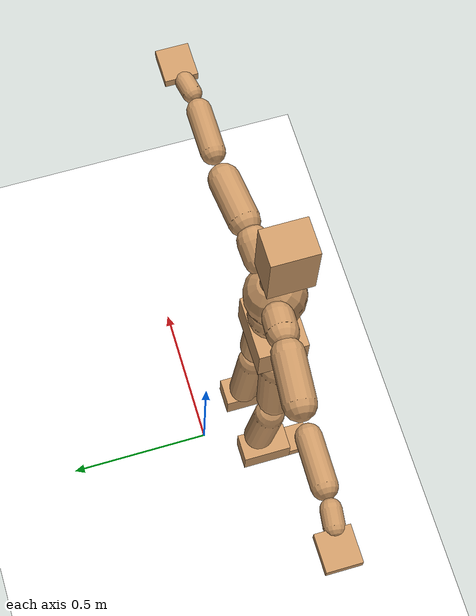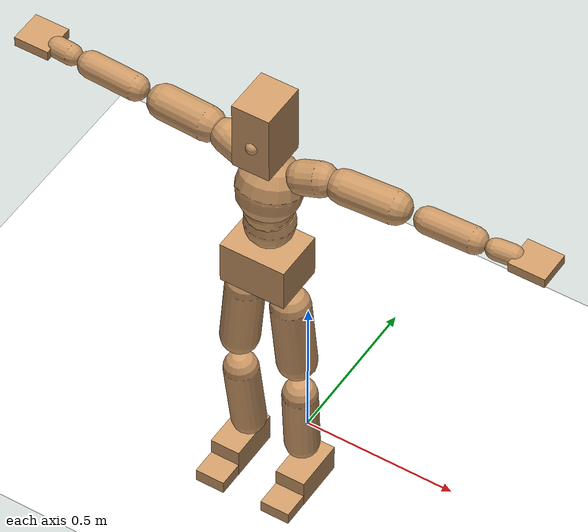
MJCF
<mujoco model="humanoid">
  <option integrator="implicitfast" />

  <visual>
    <global offwidth="1280" offheight="960" />
    <headlight active="1" ambient="0.34 0.34 0.34" diffuse="0.5 0.5 0.5" />
  </visual>

  <default>
    <joint damping="2" stiffness="2" armature="0.01" limited="true" solimplimit="0 .99 .01" />
    <geom condim="1" friction="0.7 0.005 0.0001" solimp=".99 .99 .003" solref="0.015 1" margin="0.001" rgba="0.8 0.6 .4 1" />
    <default class="smplcontact">
      <geom condim="3" friction="1. 0.005 0.0001" solref="0.015 1" solimp="0.98 0.98 0.001" priority="1" />
    </default>
    <default class="stiff_medium">
      <joint stiffness="10" />
    </default>
    <default class="stiff_medium_higher">
      <joint stiffness="50" />
    </default>
    <default class="stiff_high">
      <joint stiffness="100" />
    </default>
  </default>

  <asset>
    <texture type="skybox" builtin="gradient" rgb1="0.99 0.99 0.99" rgb2="0.608 0.828 0.892" width="100" />
    <texture builtin="flat" height="1278" mark="cross" markrgb="1 1 1" name="texgeom" random="0.01" rgb1="0.8 0.6 0.4" rgb2="0.8 0.6 0.4" type="cube" width="127" />
    <texture name="texplane" type="2d" builtin="checker" markrgb="1 1 1" rgb1="0.756 0.772 0.76" rgb2="0.6 0.6 0.6" width="100" height="100" />
    <material name="MatPlane" reflectance="0.5" texture="texplane" texrepeat="1 1" texuniform="true" />
    <material name="geom" texture="texgeom" texuniform="true" />
  </asset>

  <worldbody>
    <light name="tracking_light" pos="0 0 7" dir="0 0 -1" directional="true" cutoff="100" exponent="1" diffuse="1 1 1" specular="0.1 0.1 0.1" mode="trackcom" />
    <camera name="back" pos="0 3 2.4" xyaxes="-1 0 0 0 -1 2" mode="trackcom" />
    <camera name="side" pos="-3 0 2.4" xyaxes="0 -1 0 1 0 2" mode="trackcom" />
    <camera name="front_side" pos="-2.8 -2.8 0.8" xyaxes="0.5 -0.5 0 0.1 0.1 1" mode="trackcom" />
    <geom condim="3" name="floor" pos="0 0 0" rgba="1 1 1 1" size="100 100 .2" type="plane" material="MatPlane" />
    <body name="Pelvis" pos="-0.0018 -0.2233 0.9367" euler="90 0 0">
      <site name="Pelvis" size="0.01" />
      <freejoint name="Pelvis" />
      <geom type="box" pos="-0.0000 -0.0121 -0.0055" size="0.1069 0.0722 0.083" quat="1.0000 0.0000 0.0000 0.0000" density="3165.830099" name="Pelvis" />
      <body name="L_Hip" pos="0.0695 -0.0914 -0.0068">
        <joint name="L_Hip_x" type="hinge" pos="0 0 0" axis="1 0 0" stiffness="10.0" range="-160.0 22.92" class="stiff_medium" damping="15.0" armature="0.01"/>
        <joint name="L_Hip_y" type="hinge" pos="0 0 0" axis="0 1 0" stiffness="10.0" range="-70.0 70.0" class="stiff_medium" damping="9.999999999999998" armature="0.009999999999999998"/>
        <joint name="L_Hip_z" type="hinge" pos="0 0 0" axis="0 0 1" stiffness="10.0" range="-28.65 90.0" class="stiff_medium" damping="9.999999999999998" armature="0.009999999999999998"/>
        <geom type="capsule" density="2040.816327" fromto="0.0069 -0.075 -0.0009 0.0274 -0.3002 -0.0036" size="0.0615" name="L_Hip" />
        <body name="L_Knee" pos="0.0343 -0.3752 -0.0045">
          <joint name="L_Knee_x" type="hinge" pos="0 0 0" axis="1 0 0" range="-5.16 171.89" damping="7.999999999999999" armature="0.009999999999999998" stiffness="2.0"/>
          <joint name="L_Knee_y" type="hinge" pos="0 0 0" axis="0 1 0" range="-4.58 6.88" damping="8.0" armature="0.010000000000000002" stiffness="2.0"/>
          <joint name="L_Knee_z" type="hinge" pos="0 0 0" axis="0 0 1" range="-6.88 4.58" damping="7.999999999999998" armature="0.009999999999999997" stiffness="2.0"/>
          <geom type="capsule" density="1234.567901" fromto="-0.0027 -0.0796 -0.0087 -0.0109 -0.3184 -0.035" size="0.0541" name="L_Knee" />
          <body name="L_Ankle" pos="-0.0136 -0.398 -0.0437">
            <joint name="L_Ankle_x" type="hinge" pos="0 0 0" axis="1 0 0" range="-45.84 45.84" class="stiff_medium" damping="6.000000000000059" armature="0.010000000000000196" stiffness="10.0"/>
            <joint name="L_Ankle_y" type="hinge" pos="0 0 0" axis="0 1 0" range="-74.48 22.92" class="stiff_medium" damping="3.000000000000001" armature="0.010000000000000005" stiffness="10.0"/>
            <joint name="L_Ankle_z" type="hinge" pos="0 0 0" axis="0 0 1" range="-4.58 4.58" class="stiff_medium" damping="6.0000000000000835" armature="0.01000000000000028" stiffness="10.0"/>
            <geom type="box" pos="0.0233 -0.0239 0.0242" size="0.0483 0.0464 0.085" quat="1.0000 0.0000 0.0000 0.0000" density="449.071558" name="L_Ankle" class="smplcontact" />
            <body name="L_Toe" pos="0.0264 -0.0558 0.1193">
              <joint name="L_Toe_x" type="hinge" pos="0 0 0" axis="1 0 0" range="-91.67 22.92" armature="0.010000000000000066" damping="2.0000000000000067" stiffness="2.0"/>
              <joint name="L_Toe_y" type="hinge" pos="0 0 0" axis="0 1 0" range="-4.58 4.58" armature="0.01" damping="2.0" stiffness="2.0"/>
              <joint name="L_Toe_z" type="hinge" pos="0 0 0" axis="0 0 1" range="-4.58 4.58" armature="0.009999999999999416" damping="1.9999999999999414" stiffness="2.0"/>
              <geom type="box" pos="-0.003 0.0055 0.0248" size="0.0478 0.02 0.0496" quat="1.0000 0.0000 0.0000 0.0000" density="423.206892" name="L_Toe" class="smplcontact" />
            </body>
          </body>
        </body>
      </body>
      <body name="R_Hip" pos="-0.0677 -0.0905 -0.0043">
        <joint name="R_Hip_x" type="hinge" pos="0 0 0" axis="1 0 0" stiffness="10.0" range="-160.0 22.92" class="stiff_medium" damping="15.0" armature="0.01"/>
        <joint name="R_Hip_y" type="hinge" pos="0 0 0" axis="0 1 0" stiffness="10.0" range="-70.0 70.0" class="stiff_medium" damping="9.999999999999998" armature="0.009999999999999998"/>
        <joint name="R_Hip_z" type="hinge" pos="0 0 0" axis="0 0 1" stiffness="10.0" range="-90.0 28.65" class="stiff_medium" damping="9.999999999999998" armature="0.009999999999999998"/>
        <geom type="capsule" density="2040.816327" fromto="-0.0077 -0.0765 -0.0018 -0.0306 -0.3061 -0.0071" size="0.0606" name="R_Hip" />
        <body name="R_Knee" pos="-0.0383 -0.3826 -0.0089">
          <joint name="R_Knee_x" type="hinge" pos="0 0 0" axis="1 0 0" range="-5.16 171.89" damping="7.999999999999999" armature="0.009999999999999998" stiffness="2.0"/>
          <joint name="R_Knee_y" type="hinge" pos="0 0 0" axis="0 1 0" range="-6.88 4.58" damping="8.0" armature="0.010000000000000002" stiffness="2.0"/>
          <joint name="R_Knee_z" type="hinge" pos="0 0 0" axis="0 0 1" range="-4.58 6.88" damping="7.999999999999998" armature="0.009999999999999997" stiffness="2.0"/>
          <geom type="capsule" density="1234.567901" fromto="0.0032 -0.0797 -0.0085 0.0126 -0.3187 -0.0338" size="0.0541" name="R_Knee" />
          <body name="R_Ankle" pos="0.0158 -0.3984 -0.0423">
            <joint name="R_Ankle_x" type="hinge" pos="0 0 0" axis="1 0 0" range="-45.84 45.84" class="stiff_medium" damping="6.000000000000059" armature="0.010000000000000196" stiffness="10.0"/>
            <joint name="R_Ankle_y" type="hinge" pos="0 0 0" axis="0 1 0" range="-22.92 74.48" class="stiff_medium" damping="3.000000000000001" armature="0.010000000000000005" stiffness="10.0"/>
            <joint name="R_Ankle_z" type="hinge" pos="0 0 0" axis="0 0 1" range="-4.58 4.58" class="stiff_medium" damping="6.0000000000000835" armature="0.01000000000000028" stiffness="10.0"/>
            <geom type="box" pos="-0.0212 -0.0174 0.0256" size="0.0483 0.0478 0.0865" quat="1.0000 0.0000 0.0000 0.0000" density="434.700981" name="R_Ankle" class="smplcontact" />
            <body name="R_Toe" pos="-0.0254 -0.0481 0.1233">
              <joint name="R_Toe_x" type="hinge" pos="0 0 0" axis="1 0 0" range="-91.67 22.92" armature="0.010000000000000066" damping="2.0000000000000067" stiffness="2.0"/>
              <joint name="R_Toe_y" type="hinge" pos="0 0 0" axis="0 1 0" range="-4.58 4.58" armature="0.01" damping="2.0" stiffness="2.0"/>
              <joint name="R_Toe_z" type="hinge" pos="0 0 0" axis="0 0 1" range="-4.58 4.58" armature="0.009999999999999416" damping="1.9999999999999414" stiffness="2.0"/>
              <geom type="box" pos="0.0042 0.0045 0.0227" size="0.0479 0.0216 0.0493" quat="1.0000 0.0000 0.0000 0.0000" density="407.384095" name="R_Toe" class="smplcontact" />
            </body>
          </body>
        </body>
      </body>
      <body name="Torso" pos="-0.001875 0.08175 -0.020025">
        <joint name="Torso_x" type="hinge" pos="0 0 0" axis="1 0 0" range="-25.78 57.3" class="stiff_medium" damping="10.913650392207913" armature="0.006667379561679105" stiffness="7.939668636363636"/>
        <joint name="Torso_y" type="hinge" pos="0 0 0" axis="0 1 0" range="-57.3 57.3" class="stiff_high" damping="17.724948533233775" armature="0.01001466915688518" stiffness="78.42840227272727"/>
        <joint name="Torso_z" type="hinge" pos="0 0 0" axis="0 0 1" range="-34.38 34.38" class="stiff_high" damping="15.292750692520116" armature="0.007730747711918963" stiffness="75.62923809523808"/>
        <geom type="capsule" density="2040.816327" fromto="0.001875 0.0456 0.000375 0.00225 0.055725 0.00045" size="0.0769" name="Torso" />
        <body name="Spine" pos="0.004125 0.1014 0.000825">
          <joint name="Spine_x" type="hinge" pos="0 0 0" axis="1 0 0" stiffness="8.1652025" range="-25.78 57.3" class="stiff_medium" damping="11.68459184157241" armature="0.007431519385894826"/>
          <joint name="Spine_y" type="hinge" pos="0 0 0" axis="0 1 0" stiffness="8.29715487804878" range="-57.3 57.3" class="stiff_high" damping="7.2939738739697715" armature="0.010018881407263069"/>
          <joint name="Spine_z" type="hinge" pos="0 0 0" axis="0 0 1" stiffness="16.66748454545455" range="-34.38 34.38" class="stiff_high" damping="10.257719901093456" armature="0.008767971195848165"/>
          <geom type="capsule" density="2040.816327" fromto="0.000525 0.01785 0.00855 0.0006 0.021825 0.0105" size="0.0755" name="Spine" />
          <body name="Chest" pos="0.001125 0.039675 0.01905">
            <joint name="Chest_x" type="hinge" pos="0 0 0" axis="1 0 0" stiffness="8.665568333333333" range="-25.78 57.3" class="stiff_medium" damping="12.409790765452927" armature="0.007898585960147425"/>
            <joint name="Chest_y" type="hinge" pos="0 0 0" axis="0 1 0" stiffness="9.207535853658538" range="-57.3 57.3" class="stiff_high" damping="7.669827966294824" armature="0.00998269616586398"/>
            <joint name="Chest_z" type="hinge" pos="0 0 0" axis="0 0 1" stiffness="17.13260045454546" range="-34.38 34.38" class="stiff_high" damping="10.65259250372851" armature="0.009199301335191097"/>
            <geom type="capsule" density="2040.816327" fromto="-0.000675 0.05115 -0.012975 -0.00075 0.062475 -0.0159" size="0.1002" name="Chest" />
            <body name="Neck" pos="-0.0021 0.160425 -0.032175">
              <joint name="Neck_x" type="hinge" pos="0 0 0" axis="1 0 0" range="-28.65 57.3" class="stiff_medium_higher" damping="9.840270859667061" armature="0.009942373205123851" stiffness="48.696085227272725"/>
              <joint name="Neck_y" type="hinge" pos="0 0 0" axis="0 1 0" range="-40.11 40.11" class="stiff_medium_higher" damping="9.817023968165504" armature="0.009837761878927204" stiffness="48.981648863636366"/>
              <joint name="Neck_z" type="hinge" pos="0 0 0" axis="0 0 1" range="-40.11 40.11" class="stiff_medium_higher" damping="9.929269324283064" armature="0.009959258954271702" stiffness="49.49685"/>
              <geom type="capsule" density="1000" fromto="0.00075 0.00975 0.007725 0.003075 0.039 0.030825" size="0.0436" name="Neck" />
              <body name="Head" pos="0.0052 0.065 0.0513">
                <joint name="Head_x" type="hinge" pos="0 0 0" axis="1 0 0" range="-28.65 57.3" class="stiff_medium_higher" damping="2.000000000000005" armature="0.010000000000000049" stiffness="50.0"/>
                <joint name="Head_y" type="hinge" pos="0 0 0" axis="0 1 0" range="-40.11 40.11" class="stiff_medium_higher" damping="2.0" armature="0.010000000000000002" stiffness="50.0"/>
                <joint name="Head_z" type="hinge" pos="0 0 0" axis="0 0 1" range="-40.11 40.11" class="stiff_medium_higher" damping="2.000000000000004" armature="0.01000000000000004" stiffness="50.0"/>
                <geom type="box" pos="-0.0042 0.0876 -0.0116" size="0.0606 0.1154 0.076" quat="1.0000 0.0000 0.0000 0.0000" density="1018.069894" name="Head" />
                <geom type="capsule" name="nose" size="0.02 0.01" pos="0 0.07 0.05" quat="1 0 0 0" mass="0" contype="0" conaffinity="0" />
              </body>
            </body>
            <body name="L_Thorax" pos="0.0788 0.1217 -0.0341">
              <joint name="L_Thorax_x" type="hinge" pos="0 0 0" axis="1 0 0" range="-10.89 4.58" class="stiff_medium_higher" damping="19.999999999999922" armature="0.009999999999999922" stiffness="50.0"/>
              <joint name="L_Thorax_y" type="hinge" pos="0 0 0" axis="0 1 0" range="-28.65 17.19" class="stiff_medium_higher" damping="20.0" armature="0.010000000000000002" stiffness="50.0"/>
              <joint name="L_Thorax_z" type="hinge" pos="0 0 0" axis="0 0 1" range="-31.51 40.11" class="stiff_medium_higher" damping="20.0" armature="0.01" stiffness="50.0"/>
              <geom type="capsule" density="1000" fromto="0.0182 0.0061 -0.0018 0.0728 0.0244 -0.0071" size="0.0521" name="L_Thorax" />
              <body name="L_Shoulder" pos="0.091 0.0305 -0.0089">
                <joint name="L_Shoulder_x" type="hinge" pos="0 0 0" axis="1 0 0" range="-97.4 97.4" class="stiff_medium" damping="5.999999999999988" armature="0.00999999999999996" stiffness="10.0"/>
                <joint name="L_Shoulder_y" type="hinge" pos="0 0 0" axis="0 1 0" range="-108.86 80.21" class="stiff_medium" damping="6.0" armature="0.01" stiffness="10.0"/>
                <joint name="L_Shoulder_z" type="hinge" pos="0 0 0" axis="0 0 1" range="-97.4 85.94" class="stiff_medium" damping="6.0" armature="0.01" stiffness="10.0"/>
                <geom type="capsule" density="1000" fromto="0.0519 -0.0026 -0.0055 0.2077 -0.0102 -0.022" size="0.0517" name="L_Shoulder" />
                <body name="L_Elbow" pos="0.2596 -0.0128 -0.0275">
                  <joint name="L_Elbow_x" type="hinge" pos="0 0 0" axis="1 0 0" range="-17.19 4.58" damping="4.999999999999961" armature="0.009999999999999842" stiffness="2.0"/>
                  <joint name="L_Elbow_y" type="hinge" pos="0 0 0" axis="0 1 0" range="-180.0 17.19" damping="5.000000000000002" armature="0.010000000000000009" stiffness="2.0"/>
                  <joint name="L_Elbow_z" type="hinge" pos="0 0 0" axis="0 0 1" range="-100.84 4.58" damping="5.0000000000000036" armature="0.010000000000000014" stiffness="2.0"/>
                  <geom type="capsule" density="1000" fromto="0.0498 0.0018 -0.0002 0.1994 0.0072 -0.0009" size="0.0405" name="L_Elbow" />
                  <body name="L_Wrist" pos="0.2492 0.009 -0.0012">
                    <joint name="L_Wrist_x" type="hinge" pos="0 0 0" axis="1 0 0" range="-180.0 22.92" armature="0.010000000000000085" damping="2.0000000000000084" stiffness="2.0"/>
                    <joint name="L_Wrist_y" type="hinge" pos="0 0 0" axis="0 1 0" range="-17.19 17.19" armature="0.009999999999999879" damping="1.9999999999999878" stiffness="2.0"/>
                    <joint name="L_Wrist_z" type="hinge" pos="0 0 0" axis="0 0 1" range="-22.92 22.92" armature="0.009999999999999934" damping="1.9999999999999933" stiffness="2.0"/>
                    <geom type="capsule" density="1000" fromto="0.0168 -0.0016 -0.003 0.0672 -0.0065 -0.012" size="0.0318" name="L_Wrist" class="smplcontact" />
                    <body name="L_Hand" pos="0.084 -0.0082 -0.0149">
                      <joint name="L_Hand_x" type="hinge" pos="0 0 0" axis="1 0 0" range="-17.19 17.19" armature="0.009999999999999867" damping="1.9999999999999867" stiffness="2.0"/>
                      <joint name="L_Hand_y" type="hinge" pos="0 0 0" axis="0 1 0" range="-51.57 51.57" armature="0.010000000000000201" damping="2.00000000000002" stiffness="2.0"/>
                      <joint name="L_Hand_z" type="hinge" pos="0 0 0" axis="0 0 1" range="-91.67 91.67" armature="0.010000000000000524" damping="2.0000000000000524" stiffness="2.0"/>
                      <geom type="box" pos="0.0493 0.001 -0.0058" size="0.0585 0.0158 0.0538" quat="1.0000 0.0000 0.0000 0.0000" density="400.552564" name="L_Hand" class="smplcontact" />
                    </body>
                  </body>
                </body>
              </body>
            </body>
            <body name="R_Thorax" pos="-0.0818 0.1188 -0.0386">
              <joint name="R_Thorax_x" type="hinge" pos="0 0 0" axis="1 0 0" range="-10.89 4.58" class="stiff_medium_higher" damping="19.999999999999922" armature="0.009999999999999922" stiffness="50.0"/>
              <joint name="R_Thorax_y" type="hinge" pos="0 0 0" axis="0 1 0" range="-17.19 28.65" class="stiff_medium_higher" damping="20.0" armature="0.010000000000000002" stiffness="50.0"/>
              <joint name="R_Thorax_z" type="hinge" pos="0 0 0" axis="0 0 1" range="-40.11 31.51" class="stiff_medium_higher" damping="20.0" armature="0.01" stiffness="50.0"/>
              <geom type="capsule" density="1000" fromto="-0.0192 0.0065 -0.0018 -0.0768 0.026 -0.0073" size="0.0511" name="R_Thorax" />
              <body name="R_Shoulder" pos="-0.096 0.0326 -0.0091">
                <joint name="R_Shoulder_x" type="hinge" pos="0 0 0" axis="1 0 0" range="-97.4 97.4" class="stiff_medium" damping="5.999999999999988" armature="0.00999999999999996" stiffness="10.0"/>
                <joint name="R_Shoulder_y" type="hinge" pos="0 0 0" axis="0 1 0" range="-80.21 108.86" class="stiff_medium" damping="6.0" armature="0.01" stiffness="10.0"/>
                <joint name="R_Shoulder_z" type="hinge" pos="0 0 0" axis="0 0 1" range="-85.94 97.4" class="stiff_medium" damping="6.0" armature="0.01" stiffness="10.0"/>
                <geom type="capsule" density="1000" fromto="-0.0507 -0.0027 -0.0043 -0.203 -0.0107 -0.0171" size="0.0531" name="R_Shoulder" />
                <body name="R_Elbow" pos="-0.2537 -0.0133 -0.0214">
                  <joint name="R_Elbow_x" type="hinge" pos="0 0 0" axis="1 0 0" range="-17.19 4.58" damping="4.999999999999961" armature="0.009999999999999842" stiffness="2.0"/>
                  <joint name="R_Elbow_y" type="hinge" pos="0 0 0" axis="0 1 0" range="-17.19 180.0" damping="5.000000000000002" armature="0.010000000000000009" stiffness="2.0"/>
                  <joint name="R_Elbow_z" type="hinge" pos="0 0 0" axis="0 0 1" range="-4.58 100.84" damping="5.0000000000000036" armature="0.010000000000000014" stiffness="2.0"/>
                  <geom type="capsule" density="1000" fromto="-0.0511 0.0016 -0.0011 -0.2042 0.0062 -0.0044" size="0.0408" name="R_Elbow" />
                  <body name="R_Wrist" pos="-0.2553 0.0078 -0.0056">
                    <joint name="R_Wrist_x" type="hinge" pos="0 0 0" axis="1 0 0" range="-180.0 22.92" armature="0.010000000000000085" damping="2.0000000000000084" stiffness="2.0"/>
                    <joint name="R_Wrist_y" type="hinge" pos="0 0 0" axis="0 1 0" range="-17.19 17.19" armature="0.009999999999999879" damping="1.9999999999999878" stiffness="2.0"/>
                    <joint name="R_Wrist_z" type="hinge" pos="0 0 0" axis="0 0 1" range="-22.92 22.92" armature="0.009999999999999934" damping="1.9999999999999933" stiffness="2.0"/>
                    <geom type="capsule" density="1000" fromto="-0.0169 -0.0012 -0.0021 -0.0677 -0.0049 -0.0083" size="0.0326" name="R_Wrist" class="smplcontact" />
                    <body name="R_Hand" pos="-0.0846 -0.0061 -0.0103">
                      <joint name="R_Hand_x" type="hinge" pos="0 0 0" axis="1 0 0" range="-17.19 17.19" armature="0.009999999999999867" damping="1.9999999999999867" stiffness="2.0"/>
                      <joint name="R_Hand_y" type="hinge" pos="0 0 0" axis="0 1 0" range="-51.57 51.57" armature="0.010000000000000201" damping="2.00000000000002" stiffness="2.0"/>
                      <joint name="R_Hand_z" type="hinge" pos="0 0 0" axis="0 0 1" range="-91.67 91.67" armature="0.010000000000000524" damping="2.0000000000000524" stiffness="2.0"/>
                      <geom type="box" pos="-0.0462 -0.0009 -0.0079" size="0.0569 0.0164 0.0546" quat="1.0000 0.0000 0.0000 0.0000" density="403.679611" name="R_Hand" class="smplcontact" />
                    </body>
                  </body>
                </body>
              </body>
            </body>
          </body>
        </body>
      </body>
    </body>
  </worldbody>
  <actuator>
    <general name="L_Hip_x" joint="L_Hip_x" biastype="affine" gainprm="287.33006409732246" biasprm="-215.3247604770444 -180.0 -2.0" ctrllimited="true" ctrlrange="-1 1" forcerange="-360.0 360.0" />
    <general name="L_Hip_y" joint="L_Hip_y" biastype="affine" gainprm="219.9114857512855" biasprm="0.0 -180.0 -1.9999999999999998" ctrllimited="true" ctrlrange="-1 1" forcerange="-360.0 360.0" />
    <general name="L_Hip_z" joint="L_Hip_z" biastype="affine" gainprm="186.3749841742145" biasprm="96.3683546488669 -180.0 -1.9999999999999998" ctrllimited="true" ctrlrange="-1 1" forcerange="-360.0 360.0" />
    <general name="L_Knee_x" joint="L_Knee_x" biastype="affine" gainprm="278.10948965903646" biasprm="261.8988715665131 -180.0 -1.9999999999999998" ctrllimited="true" ctrlrange="-1 1" forcerange="-360.0 360.0" />
    <general name="L_Knee_y" joint="L_Knee_y" biastype="affine" gainprm="18.001325905069514" biasprm="3.612831551628262 -180.0 -2.0" ctrllimited="true" ctrlrange="-1 1" forcerange="-360.0 360.0" />
    <general name="L_Knee_z" joint="L_Knee_z" biastype="affine" gainprm="18.001325905069514" biasprm="-3.612831551628262 -180.0 -1.9999999999999996" ctrllimited="true" ctrlrange="-1 1" forcerange="-360.0 360.0" />
    <general name="L_Ankle_x" joint="L_Ankle_x" biastype="affine" gainprm="72.00530362027807" biasprm="0.0 -90.0 -2.0000000000000195" ctrllimited="true" ctrlrange="-1 1" forcerange="-180.0 180.0" />
    <general name="L_Ankle_y" joint="L_Ankle_y" biastype="affine" gainprm="76.49778111491148" biasprm="-40.49512930477244 -90.0 -2.0000000000000004" ctrllimited="true" ctrlrange="-1 1" forcerange="-180.0 180.0" />
    <general name="L_Ankle_z" joint="L_Ankle_z" biastype="affine" gainprm="7.1942471767206255" biasprm="0.0 -90.0 -2.000000000000028" ctrllimited="true" ctrlrange="-1 1" forcerange="-180.0 180.0" />
    <general name="L_Toe_x" joint="L_Toe_x" biastype="affine" gainprm="71.99902043497087" biasprm="-43.19689898685965 -72.0 -0.8000000000000027" ctrllimited="true" ctrlrange="-1 1" forcerange="-144.0 144.0" />
    <general name="L_Toe_y" joint="L_Toe_y" biastype="affine" gainprm="5.755397741376501" biasprm="0.0 -72.0 -0.8" ctrllimited="true" ctrlrange="-1 1" forcerange="-144.0 144.0" />
    <general name="L_Toe_z" joint="L_Toe_z" biastype="affine" gainprm="5.755397741376501" biasprm="0.0 -72.0 -0.7999999999999766" ctrllimited="true" ctrlrange="-1 1" forcerange="-144.0 144.0" />
    <general name="R_Hip_x" joint="R_Hip_x" biastype="affine" gainprm="287.33006409732246" biasprm="-215.3247604770444 -180.0 -2.0" ctrllimited="true" ctrlrange="-1 1" forcerange="-360.0 360.0" />
    <general name="R_Hip_y" joint="R_Hip_y" biastype="affine" gainprm="219.9114857512855" biasprm="0.0 -180.0 -1.9999999999999998" ctrllimited="true" ctrlrange="-1 1" forcerange="-360.0 360.0" />
    <general name="R_Hip_z" joint="R_Hip_z" biastype="affine" gainprm="186.3749841742145" biasprm="-96.3683546488669 -180.0 -1.9999999999999998" ctrllimited="true" ctrlrange="-1 1" forcerange="-360.0 360.0" />
    <general name="R_Knee_x" joint="R_Knee_x" biastype="affine" gainprm="278.10948965903646" biasprm="261.8988715665131 -180.0 -1.9999999999999998" ctrllimited="true" ctrlrange="-1 1" forcerange="-360.0 360.0" />
    <general name="R_Knee_y" joint="R_Knee_y" biastype="affine" gainprm="18.001325905069514" biasprm="-3.612831551628262 -180.0 -2.0" ctrllimited="true" ctrlrange="-1 1" forcerange="-360.0 360.0" />
    <general name="R_Knee_z" joint="R_Knee_z" biastype="affine" gainprm="18.001325905069514" biasprm="3.612831551628262 -180.0 -1.9999999999999996" ctrllimited="true" ctrlrange="-1 1" forcerange="-360.0 360.0" />
    <general name="R_Ankle_x" joint="R_Ankle_x" biastype="affine" gainprm="72.00530362027807" biasprm="0.0 -90.0 -2.0000000000000195" ctrllimited="true" ctrlrange="-1 1" forcerange="-180.0 180.0" />
    <general name="R_Ankle_y" joint="R_Ankle_y" biastype="affine" gainprm="76.49778111491148" biasprm="40.49512930477244 -90.0 -2.0000000000000004" ctrllimited="true" ctrlrange="-1 1" forcerange="-180.0 180.0" />
    <general name="R_Ankle_z" joint="R_Ankle_z" biastype="affine" gainprm="7.1942471767206255" biasprm="0.0 -90.0 -2.000000000000028" ctrllimited="true" ctrlrange="-1 1" forcerange="-180.0 180.0" />
    <general name="R_Toe_x" joint="R_Toe_x" biastype="affine" gainprm="71.99902043497087" biasprm="-43.19689898685965 -72.0 -0.8000000000000027" ctrllimited="true" ctrlrange="-1 1" forcerange="-144.0 144.0" />
    <general name="R_Toe_y" joint="R_Toe_y" biastype="affine" gainprm="5.755397741376501" biasprm="0.0 -72.0 -0.8" ctrllimited="true" ctrlrange="-1 1" forcerange="-144.0 144.0" />
    <general name="R_Toe_z" joint="R_Toe_z" biastype="affine" gainprm="5.755397741376501" biasprm="0.0 -72.0 -0.7999999999999766" ctrllimited="true" ctrlrange="-1 1" forcerange="-144.0 144.0" />
    <general name="Torso_x" joint="Torso_x" biastype="affine" gainprm="138.15209620983933" biasprm="52.413987392081545 -190.55204727272726 -2.9103067712554433" ctrllimited="true" ctrlrange="-1 1" forcerange="-285.8280709090909 285.8280709090909" />
    <general name="Torso_y" joint="Torso_y" biastype="affine" gainprm="188.24203060336777" biasprm="0.0 -188.22816545454546 -3.544989706646755" ctrllimited="true" ctrlrange="-1 1" forcerange="-282.34224818181815 282.34224818181815" />
    <general name="Torso_z" joint="Torso_z" biastype="affine" gainprm="108.91412503235837" biasprm="0.0 -181.5101714285714 -3.0585501385040232" ctrllimited="true" ctrlrange="-1 1" forcerange="-272.2652571428571 272.2652571428571" />
    <general name="Spine_x" joint="Spine_x" biastype="affine" gainprm="142.0764383272124" biasprm="53.90285671730541 -195.96486 -3.1158911577526425" ctrllimited="true" ctrlrange="-1 1" forcerange="-293.94728999999995 293.94728999999995" />
    <general name="Spine_y" joint="Spine_y" biastype="affine" gainprm="199.14638539279116" biasprm="0.0 -199.1317170731707 -3.6469869369848857" ctrllimited="true" ctrlrange="-1 1" forcerange="-298.69757560975603 298.69757560975603" />
    <general name="Spine_z" joint="Spine_z" biastype="affine" gainprm="120.01472852817471" biasprm="0.0 -200.00981454545456 -3.419239967031152" ctrllimited="true" ctrlrange="-1 1" forcerange="-300.01472181818184 300.01472181818184" />
    <general name="Chest_x" joint="Chest_x" biastype="affine" gainprm="150.78292116834555" biasprm="57.20603845963229 -207.97364 -3.309277537454114" ctrllimited="true" ctrlrange="-1 1" forcerange="-311.96046 311.96046" />
    <general name="Chest_y" joint="Chest_y" biastype="affine" gainprm="220.9971382457597" biasprm="0.0 -220.9808604878049 -3.834913983147412" ctrllimited="true" ctrlrange="-1 1" forcerange="-331.4712907317073 331.4712907317073" />
    <general name="Chest_z" joint="Chest_z" biastype="affine" gainprm="123.36380975344599" biasprm="0.0 -205.5912054545455 -3.5508641679095034" ctrllimited="true" ctrlrange="-1 1" forcerange="-308.38680818181825 308.38680818181825" />
    <general name="Neck_x" joint="Neck_x" biastype="affine" gainprm="26.29782301431532" biasprm="8.765941004771774 -35.06118136363636 -0.787221668773365" ctrllimited="true" ctrlrange="-1 1" forcerange="-70.12236272727272 70.12236272727272" />
    <general name="Neck_y" joint="Neck_y" biastype="affine" gainprm="24.68856948773589" biasprm="0.0 -35.26678718181819 -0.7853619174532404" ctrllimited="true" ctrlrange="-1 1" forcerange="-70.53357436363638 70.53357436363638" />
    <general name="Neck_z" joint="Neck_z" biastype="affine" gainprm="24.94824998748152" biasprm="0.0 -35.637732 -0.7943415459426452" ctrllimited="true" ctrlrange="-1 1" forcerange="-71.275464 71.275464" />
    <general name="Head_x" joint="Head_x" biastype="affine" gainprm="18.001325905069514" biasprm="6.000441968356505 -24.0 -0.800000000000002" ctrllimited="true" ctrlrange="-1 1" forcerange="-48.0 48.0" />
    <general name="Head_y" joint="Head_y" biastype="affine" gainprm="16.801237511398213" biasprm="0.0 -24.0 -0.8" ctrllimited="true" ctrlrange="-1 1" forcerange="-48.0 48.0" />
    <general name="Head_z" joint="Head_z" biastype="affine" gainprm="16.801237511398213" biasprm="0.0 -24.0 -0.8000000000000016" ctrllimited="true" ctrlrange="-1 1" forcerange="-48.0 48.0" />
    <general name="L_Thorax_x" joint="L_Thorax_x" biastype="affine" gainprm="16.200146117011364" biasprm="-6.6078165480505335 -120.0 -1.5999999999999939" ctrllimited="true" ctrlrange="-1 1" forcerange="-240.0 240.0" />
    <general name="L_Thorax_y" joint="L_Thorax_y" biastype="affine" gainprm="48.00353574685204" biasprm="-12.00088393671301 -120.0 -1.6" ctrllimited="true" ctrlrange="-1 1" forcerange="-240.0 240.0" />
    <general name="L_Thorax_z" joint="L_Thorax_z" biastype="affine" gainprm="75.00028861670033" biasprm="9.00589894029074 -120.0 -1.6" ctrllimited="true" ctrlrange="-1 1" forcerange="-240.0 240.0" />
    <general name="L_Shoulder_x" joint="L_Shoulder_x" biastype="affine" gainprm="81.5976331892389" biasprm="0.0 -48.0 -1.599999999999997" ctrllimited="true" ctrlrange="-1 1" forcerange="-96.0 96.0" />
    <general name="L_Shoulder_y" joint="L_Shoulder_y" biastype="affine" gainprm="79.19745640189629" biasprm="-12.00088393671301 -48.0 -1.6" ctrllimited="true" ctrlrange="-1 1" forcerange="-96.0 96.0" />
    <general name="L_Shoulder_z" joint="L_Shoulder_z" biastype="affine" gainprm="76.79727961455369" biasprm="-4.800353574685214 -48.0 -1.6" ctrllimited="true" ctrlrange="-1 1" forcerange="-96.0 96.0" />
    <general name="L_Elbow_x" joint="L_Elbow_x" biastype="affine" gainprm="13.67849441372996" biasprm="-7.923096672353461 -72.0 -0.7999999999999937" ctrllimited="true" ctrlrange="-1 1" forcerange="-144.0 144.0" />
    <general name="L_Elbow_y" joint="L_Elbow_y" biastype="affine" gainprm="123.89813107227425" biasprm="-102.29653998619085 -72.0 -0.8000000000000004" ctrllimited="true" ctrlrange="-1 1" forcerange="-144.0 144.0" />
    <general name="L_Elbow_z" joint="L_Elbow_z" biastype="affine" gainprm="66.23733950828719" biasprm="-60.4819417669107 -72.0 -0.8000000000000006" ctrllimited="true" ctrlrange="-1 1" forcerange="-144.0 144.0" />
    <general name="L_Wrist_x" joint="L_Wrist_x" biastype="affine" gainprm="21.24973270888136" biasprm="-16.449379134196157 -12.0 -0.8000000000000034" ctrllimited="true" ctrlrange="-1 1" forcerange="-24.0 24.0" />
    <general name="L_Wrist_y" joint="L_Wrist_y" biastype="affine" gainprm="3.6002651810139037" biasprm="0.0 -12.0 -0.7999999999999952" ctrllimited="true" ctrlrange="-1 1" forcerange="-24.0 24.0" />
    <general name="L_Wrist_z" joint="L_Wrist_z" biastype="affine" gainprm="4.800353574685205" biasprm="0.0 -12.0 -0.7999999999999974" ctrllimited="true" ctrlrange="-1 1" forcerange="-24.0 24.0" />
    <general name="L_Hand_x" joint="L_Hand_x" biastype="affine" gainprm="3.6002651810139037" biasprm="0.0 -12.0 -0.7999999999999947" ctrllimited="true" ctrlrange="-1 1" forcerange="-24.0 24.0" />
    <general name="L_Hand_y" joint="L_Hand_y" biastype="affine" gainprm="10.800795543041708" biasprm="0.0 -12.0 -0.800000000000008" ctrllimited="true" ctrlrange="-1 1" forcerange="-24.0 24.0" />
    <general name="L_Hand_z" joint="L_Hand_z" biastype="affine" gainprm="19.199319903638422" biasprm="0.0 -12.0 -0.800000000000021" ctrllimited="true" ctrlrange="-1 1" forcerange="-24.0 24.0" />
    <general name="R_Thorax_x" joint="R_Thorax_x" biastype="affine" gainprm="16.200146117011364" biasprm="-6.6078165480505335 -120.0 -1.5999999999999939" ctrllimited="true" ctrlrange="-1 1" forcerange="-240.0 240.0" />
    <general name="R_Thorax_y" joint="R_Thorax_y" biastype="affine" gainprm="48.00353574685204" biasprm="12.000883936713002 -120.0 -1.6" ctrllimited="true" ctrlrange="-1 1" forcerange="-240.0 240.0" />
    <general name="R_Thorax_z" joint="R_Thorax_z" biastype="affine" gainprm="75.00028861670033" biasprm="-9.00589894029074 -120.0 -1.6" ctrllimited="true" ctrlrange="-1 1" forcerange="-240.0 240.0" />
    <general name="R_Shoulder_x" joint="R_Shoulder_x" biastype="affine" gainprm="81.5976331892389" biasprm="0.0 -48.0 -1.599999999999997" ctrllimited="true" ctrlrange="-1 1" forcerange="-96.0 96.0" />
    <general name="R_Shoulder_y" joint="R_Shoulder_y" biastype="affine" gainprm="79.19745640189629" biasprm="12.00088393671301 -48.0 -1.6" ctrllimited="true" ctrlrange="-1 1" forcerange="-96.0 96.0" />
    <general name="R_Shoulder_z" joint="R_Shoulder_z" biastype="affine" gainprm="76.79727961455369" biasprm="4.800353574685204 -48.0 -1.6" ctrllimited="true" ctrlrange="-1 1" forcerange="-96.0 96.0" />
    <general name="R_Elbow_x" joint="R_Elbow_x" biastype="affine" gainprm="13.67849441372996" biasprm="-7.923096672353461 -72.0 -0.7999999999999937" ctrllimited="true" ctrlrange="-1 1" forcerange="-144.0 144.0" />
    <general name="R_Elbow_y" joint="R_Elbow_y" biastype="affine" gainprm="123.89813107227425" biasprm="102.29653998619085 -72.0 -0.8000000000000004" ctrllimited="true" ctrlrange="-1 1" forcerange="-144.0 144.0" />
    <general name="R_Elbow_z" joint="R_Elbow_z" biastype="affine" gainprm="66.23733950828719" biasprm="60.481941766910694 -72.0 -0.8000000000000006" ctrllimited="true" ctrlrange="-1 1" forcerange="-144.0 144.0" />
    <general name="R_Wrist_x" joint="R_Wrist_x" biastype="affine" gainprm="21.24973270888136" biasprm="-16.449379134196157 -12.0 -0.8000000000000034" ctrllimited="true" ctrlrange="-1 1" forcerange="-24.0 24.0" />
    <general name="R_Wrist_y" joint="R_Wrist_y" biastype="affine" gainprm="3.6002651810139037" biasprm="0.0 -12.0 -0.7999999999999952" ctrllimited="true" ctrlrange="-1 1" forcerange="-24.0 24.0" />
    <general name="R_Wrist_z" joint="R_Wrist_z" biastype="affine" gainprm="4.800353574685205" biasprm="0.0 -12.0 -0.7999999999999974" ctrllimited="true" ctrlrange="-1 1" forcerange="-24.0 24.0" />
    <general name="R_Hand_x" joint="R_Hand_x" biastype="affine" gainprm="3.6002651810139037" biasprm="0.0 -12.0 -0.7999999999999947" ctrllimited="true" ctrlrange="-1 1" forcerange="-24.0 24.0" />
    <general name="R_Hand_y" joint="R_Hand_y" biastype="affine" gainprm="10.800795543041708" biasprm="0.0 -12.0 -0.800000000000008" ctrllimited="true" ctrlrange="-1 1" forcerange="-24.0 24.0" />
    <general name="R_Hand_z" joint="R_Hand_z" biastype="affine" gainprm="19.199319903638422" biasprm="0.0 -12.0 -0.800000000000021" ctrllimited="true" ctrlrange="-1 1" forcerange="-24.0 24.0" />
  </actuator>
  <contact>
    <exclude body1="Torso" body2="Chest" />
    <exclude body1="Head" body2="Chest" />
    <exclude body1="R_Knee" body2="R_Toe" />
    <exclude body1="R_Knee" body2="L_Ankle" />
    <exclude body1="R_Knee" body2="L_Toe" />
    <exclude body1="L_Knee" body2="L_Toe" />
    <exclude body1="L_Knee" body2="R_Ankle" />
    <exclude body1="L_Knee" body2="R_Toe" />
    <exclude body1="L_Shoulder" body2="Chest" />
    <exclude body1="R_Shoulder" body2="Chest" />
  </contact>
  <sensor>
    <framelinvel name="sensor_Pelvis_framelinvel" objtype="xbody" objname="Pelvis" />
    <framelinvel name="sensor_L_Hip_framelinvel" objtype="xbody" objname="L_Hip" />
    <framelinvel name="sensor_L_Knee_framelinvel" objtype="xbody" objname="L_Knee" />
    <framelinvel name="sensor_L_Ankle_framelinvel" objtype="xbody" objname="L_Ankle" />
    <framelinvel name="sensor_L_Toe_framelinvel" objtype="xbody" objname="L_Toe" />
    <framelinvel name="sensor_R_Hip_framelinvel" objtype="xbody" objname="R_Hip" />
    <framelinvel name="sensor_R_Knee_framelinvel" objtype="xbody" objname="R_Knee" />
    <framelinvel name="sensor_R_Ankle_framelinvel" objtype="xbody" objname="R_Ankle" />
    <framelinvel name="sensor_R_Toe_framelinvel" objtype="xbody" objname="R_Toe" />
    <framelinvel name="sensor_Torso_framelinvel" objtype="xbody" objname="Torso" />
    <framelinvel name="sensor_Spine_framelinvel" objtype="xbody" objname="Spine" />
    <framelinvel name="sensor_Chest_framelinvel" objtype="xbody" objname="Chest" />
    <framelinvel name="sensor_Neck_framelinvel" objtype="xbody" objname="Neck" />
    <framelinvel name="sensor_Head_framelinvel" objtype="xbody" objname="Head" />
    <framelinvel name="sensor_L_Thorax_framelinvel" objtype="xbody" objname="L_Thorax" />
    <framelinvel name="sensor_L_Shoulder_framelinvel" objtype="xbody" objname="L_Shoulder" />
    <framelinvel name="sensor_L_Elbow_framelinvel" objtype="xbody" objname="L_Elbow" />
    <framelinvel name="sensor_L_Wrist_framelinvel" objtype="xbody" objname="L_Wrist" />
    <framelinvel name="sensor_L_Hand_framelinvel" objtype="xbody" objname="L_Hand" />
    <framelinvel name="sensor_R_Thorax_framelinvel" objtype="xbody" objname="R_Thorax" />
    <framelinvel name="sensor_R_Shoulder_framelinvel" objtype="xbody" objname="R_Shoulder" />
    <framelinvel name="sensor_R_Elbow_framelinvel" objtype="xbody" objname="R_Elbow" />
    <framelinvel name="sensor_R_Wrist_framelinvel" objtype="xbody" objname="R_Wrist" />
    <framelinvel name="sensor_R_Hand_framelinvel" objtype="xbody" objname="R_Hand" />
    <frameangvel name="sensor_Pelvis_frameangvel" objtype="xbody" objname="Pelvis" />
    <frameangvel name="sensor_L_Hip_frameangvel" objtype="xbody" objname="L_Hip" />
    <frameangvel name="sensor_L_Knee_frameangvel" objtype="xbody" objname="L_Knee" />
    <frameangvel name="sensor_L_Ankle_frameangvel" objtype="xbody" objname="L_Ankle" />
    <frameangvel name="sensor_L_Toe_frameangvel" objtype="xbody" objname="L_Toe" />
    <frameangvel name="sensor_R_Hip_frameangvel" objtype="xbody" objname="R_Hip" />
    <frameangvel name="sensor_R_Knee_frameangvel" objtype="xbody" objname="R_Knee" />
    <frameangvel name="sensor_R_Ankle_frameangvel" objtype="xbody" objname="R_Ankle" />
    <frameangvel name="sensor_R_Toe_frameangvel" objtype="xbody" objname="R_Toe" />
    <frameangvel name="sensor_Torso_frameangvel" objtype="xbody" objname="Torso" />
    <frameangvel name="sensor_Spine_frameangvel" objtype="xbody" objname="Spine" />
    <frameangvel name="sensor_Chest_frameangvel" objtype="xbody" objname="Chest" />
    <frameangvel name="sensor_Neck_frameangvel" objtype="xbody" objname="Neck" />
    <frameangvel name="sensor_Head_frameangvel" objtype="xbody" objname="Head" />
    <frameangvel name="sensor_L_Thorax_frameangvel" objtype="xbody" objname="L_Thorax" />
    <frameangvel name="sensor_L_Shoulder_frameangvel" objtype="xbody" objname="L_Shoulder" />
    <frameangvel name="sensor_L_Elbow_frameangvel" objtype="xbody" objname="L_Elbow" />
    <frameangvel name="sensor_L_Wrist_frameangvel" objtype="xbody" objname="L_Wrist" />
    <frameangvel name="sensor_L_Hand_frameangvel" objtype="xbody" objname="L_Hand" />
    <frameangvel name="sensor_R_Thorax_frameangvel" objtype="xbody" objname="R_Thorax" />
    <frameangvel name="sensor_R_Shoulder_frameangvel" objtype="xbody" objname="R_Shoulder" />
    <frameangvel name="sensor_R_Elbow_frameangvel" objtype="xbody" objname="R_Elbow" />
    <frameangvel name="sensor_R_Wrist_frameangvel" objtype="xbody" objname="R_Wrist" />
    <frameangvel name="sensor_R_Hand_frameangvel" objtype="xbody" objname="R_Hand" />
    <subtreelinvel name="Chest_subtreelinvel" body="Chest" />
    <gyro name="Pelvis_gyro" site="Pelvis" />
  </sensor>
</mujoco>
